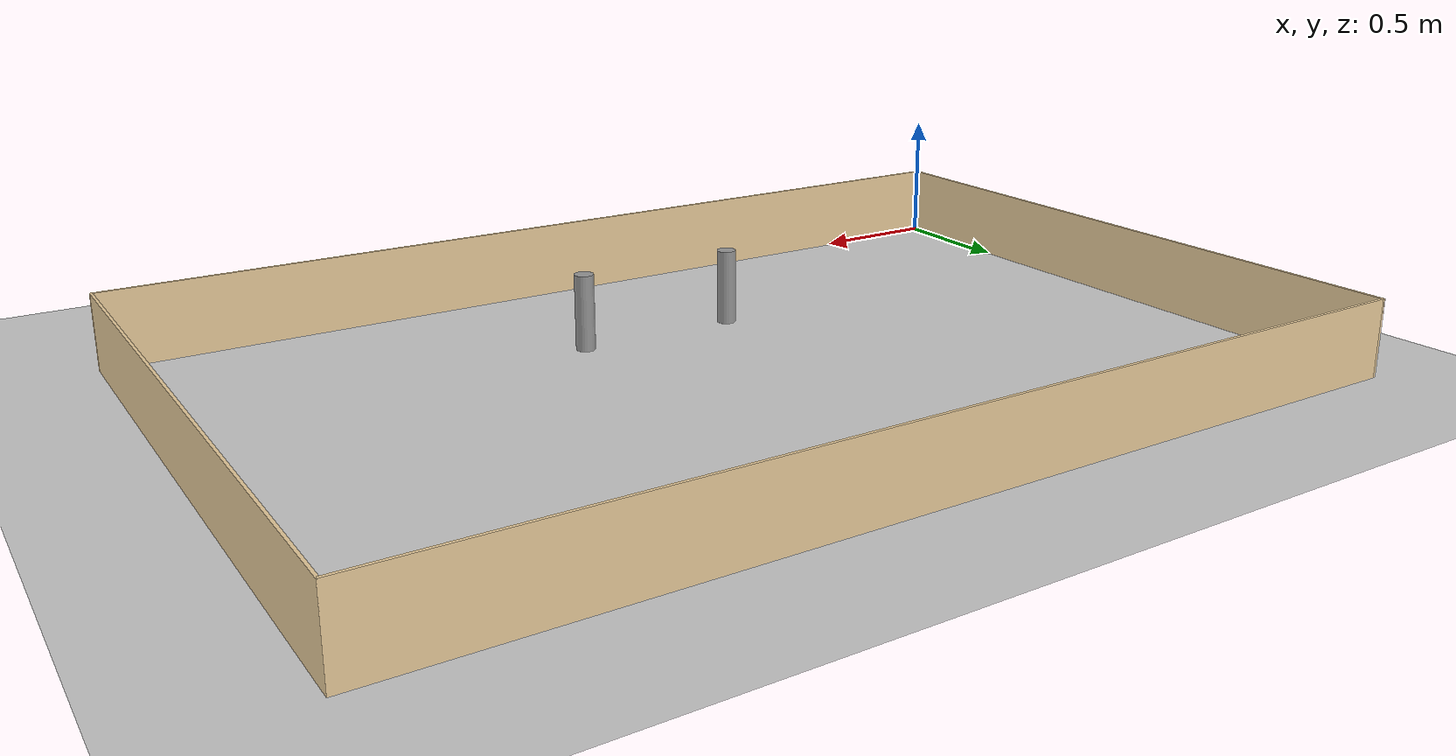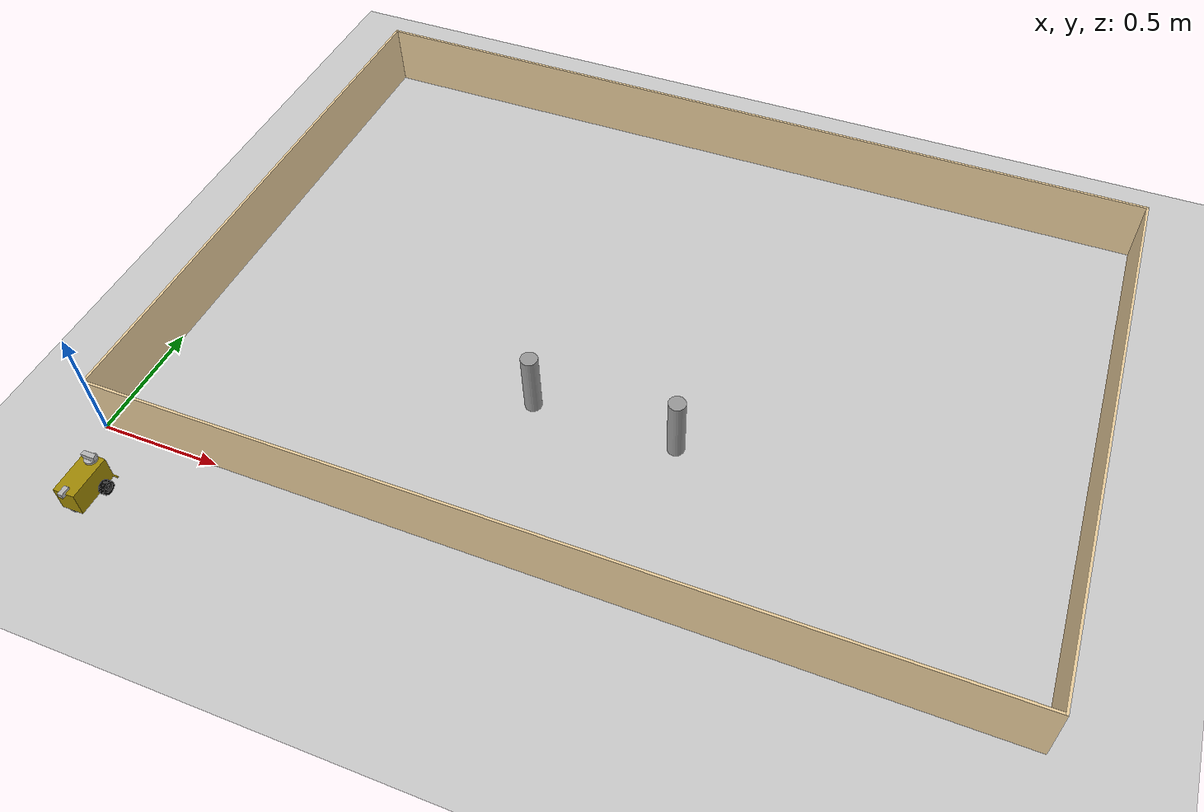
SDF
<?xml version="1.0" ?>
<sdf version="1.4">
  <world name="default">
    <scene>
      <ambient>0.5 0.5 0.5 1.0</ambient>
      <shadows>0</shadows>
    </scene>
    <include>
      <uri>model://ground_plane</uri>
    </include>
    <include>
      <uri>model://sun</uri>
    </include>
    <include>
      <uri>model://lego_mindstorm</uri>
      <name>lego_robot</name>
      <pose>0.14 -0.28 0 0 0 0</pose> <!-- this is the robot's starting position, if you know where it should be, you can change this -->
    </include>

    <model name='unit_cylinder1_1'>
      <link name='link'>
        <pose frame=''>2.11 0.7 0.14 0 -0 0</pose>
        <inertial>
          <mass>1</mass>
          <inertia>
            <ixx>0.145833</ixx>
            <ixy>0</ixy>
            <ixz>0</ixz>
            <iyy>0.145833</iyy>
            <iyz>0</iyz>
            <izz>0.125</izz>
          </inertia>
          <pose frame=''>0 0 0 0 -0 0</pose>
        </inertial>
        <self_collide>0</self_collide>
        <kinematic>0</kinematic>
        <gravity>1</gravity>
        <visual name='visual'>
          <geometry>
            <cylinder>
              <radius>0.035</radius>
              <length>0.28</length>
            </cylinder>
          </geometry>
          <material>
            <script>
              <name>Gazebo/Grey</name>
              <uri>file://media/materials/scripts/gazebo.material</uri>
            </script>
            <ambient>0.3 0.3 0.3 1</ambient>
            <diffuse>0.7 0.7 0.7 1</diffuse>
            <specular>0.01 0.01 0.01 1</specular>
            <emissive>0 0 0 1</emissive>
            <shader type='vertex'>
              <normal_map>__default__</normal_map>
            </shader>
          </material>
          <pose frame=''>0 0 0 0 -0 0</pose>
          <transparency>0</transparency>
          <cast_shadows>1</cast_shadows>
        </visual>
        <collision name='collision'>
          <laser_retro>0</laser_retro>
          <max_contacts>10</max_contacts>
          <pose frame=''>0 0 0 0 -0 0</pose>
          <geometry>
            <cylinder>
              <radius>0.035</radius>
              <length>0.28</length>
            </cylinder>
          </geometry>
          <surface>
            <friction>
              <ode>
                <mu>1</mu>
                <mu2>1</mu2>
                <fdir1>0 0 0</fdir1>
                <slip1>0</slip1>
                <slip2>0</slip2>
              </ode>
              <torsional>
                <coefficient>1</coefficient>
                <patch_radius>0</patch_radius>
                <surface_radius>0</surface_radius>
                <use_patch_radius>1</use_patch_radius>
                <ode>
                  <slip>0</slip>
                </ode>
              </torsional>
            </friction>
            <bounce>
              <restitution_coefficient>0</restitution_coefficient>
              <threshold>1e+06</threshold>
            </bounce>
            <contact>
              <collide_without_contact>0</collide_without_contact>
              <collide_without_contact_bitmask>1</collide_without_contact_bitmask>
              <collide_bitmask>1</collide_bitmask>
              <ode>
                <soft_cfm>0</soft_cfm>
                <soft_erp>0.2</soft_erp>
                <kp>1e+13</kp>
                <kd>1</kd>
                <max_vel>0.01</max_vel>
                <min_depth>0</min_depth>
              </ode>
              <bullet>
                <split_impulse>1</split_impulse>
                <split_impulse_penetration_threshold>-0.01</split_impulse_penetration_threshold>
                <soft_cfm>0</soft_cfm>
                <soft_erp>0.2</soft_erp>
                <kp>1e+13</kp>
                <kd>1</kd>
              </bullet>
            </contact>
          </surface>
        </collision>
      </link>
      <static>1</static>
      <allow_auto_disable>1</allow_auto_disable>
      <pose frame=''>0 0 0 0 -0 0</pose>
    </model>

    <model name='unit_cylinder1_2'>
      <link name='link'>
        <pose frame=''>1.51 0.7 0.14 0 -0 0</pose>
        <inertial>
          <mass>1</mass>
          <inertia>
            <ixx>0.145833</ixx>
            <ixy>0</ixy>
            <ixz>0</ixz>
            <iyy>0.145833</iyy>
            <iyz>0</iyz>
            <izz>0.125</izz>
          </inertia>
          <pose frame=''>0 0 0 0 -0 0</pose>
        </inertial>
        <self_collide>0</self_collide>
        <kinematic>0</kinematic>
        <gravity>1</gravity>
        <visual name='visual'>
          <geometry>
            <cylinder>
              <radius>0.035</radius>
              <length>0.28</length>
            </cylinder>
          </geometry>
          <material>
            <script>
              <name>Gazebo/Grey</name>
              <uri>file://media/materials/scripts/gazebo.material</uri>
            </script>
            <ambient>0.3 0.3 0.3 1</ambient>
            <diffuse>0.7 0.7 0.7 1</diffuse>
            <specular>0.01 0.01 0.01 1</specular>
            <emissive>0 0 0 1</emissive>
            <shader type='vertex'>
              <normal_map>__default__</normal_map>
            </shader>
          </material>
          <pose frame=''>0 0 0 0 -0 0</pose>
          <transparency>0</transparency>
          <cast_shadows>1</cast_shadows>
        </visual>
        <collision name='collision'>
          <laser_retro>0</laser_retro>
          <max_contacts>10</max_contacts>
          <pose frame=''>0 0 0 0 -0 0</pose>
          <geometry>
            <cylinder>
              <radius>0.035</radius>
              <length>0.28</length>
            </cylinder>
          </geometry>
          <surface>
            <friction>
              <ode>
                <mu>1</mu>
                <mu2>1</mu2>
                <fdir1>0 0 0</fdir1>
                <slip1>0</slip1>
                <slip2>0</slip2>
              </ode>
              <torsional>
                <coefficient>1</coefficient>
                <patch_radius>0</patch_radius>
                <surface_radius>0</surface_radius>
                <use_patch_radius>1</use_patch_radius>
                <ode>
                  <slip>0</slip>
                </ode>
              </torsional>
            </friction>
            <bounce>
              <restitution_coefficient>0</restitution_coefficient>
              <threshold>1e+06</threshold>
            </bounce>
            <contact>
              <collide_without_contact>0</collide_without_contact>
              <collide_without_contact_bitmask>1</collide_without_contact_bitmask>
              <collide_bitmask>1</collide_bitmask>
              <ode>
                <soft_cfm>0</soft_cfm>
                <soft_erp>0.2</soft_erp>
                <kp>1e+13</kp>
                <kd>1</kd>
                <max_vel>0.01</max_vel>
                <min_depth>0</min_depth>
              </ode>
              <bullet>
                <split_impulse>1</split_impulse>
                <split_impulse_penetration_threshold>-0.01</split_impulse_penetration_threshold>
                <soft_cfm>0</soft_cfm>
                <soft_erp>0.2</soft_erp>
                <kp>1e+13</kp>
                <kd>1</kd>
              </bullet>
            </contact>
          </surface>
        </collision>
      </link>
      <static>1</static>
      <allow_auto_disable>1</allow_auto_disable>
      <pose frame=''>0 0 0 0 -0 0</pose>
    </model>

    <model name='outer_box'>
    <pose frame=''>1.81 1.21 0 0 -0 0</pose>
    <link name='Wall_0'>
      <collision name='Wall_0_Collision'>
        <geometry>
          <box>
            <size>3.63 0.01 0.28</size>
          </box>
        </geometry>
        <pose frame=''>0 0 0.14 0 -0 0</pose>
      </collision>
      <visual name='Wall_0_Visual'>
        <pose frame=''>0 0 0.14 0 -0 0</pose>
        <geometry>
          <box>
            <size>3.63 0.01 0.28</size>
          </box>
        </geometry>
        <material>
          <script>
            <uri>file://media/materials/scripts/gazebo.material</uri>
            <name>Gazebo/Grey</name>
          </script>
          <ambient>0.921569 0.807843 0.615686 1</ambient>
        </material>
        <meta>
          <layer>0</layer>
        </meta>
      </visual>
      <pose frame=''>0 1.21 0 0 -0 0</pose>
    </link>
    <link name='Wall_2'>
      <collision name='Wall_2_Collision'>
        <geometry>
          <box>
            <size>2.43 0.01 0.28</size>
          </box>
        </geometry>
        <pose frame=''>0 0 0.14 0 -0 0</pose>
      </collision>
      <visual name='Wall_2_Visual'>
        <pose frame=''>0 0 0.14 0 -0 0</pose>
        <geometry>
          <box>
            <size>2.43 0.01 0.28</size>
          </box>
        </geometry>
        <material>
          <script>
            <uri>file://media/materials/scripts/gazebo.material</uri>
            <name>Gazebo/Grey</name>
          </script>
          <ambient>0.921569 0.807843 0.615686 1</ambient>
        </material>
        <meta>
          <layer>0</layer>
        </meta>
      </visual>
      <pose frame=''>1.81 0 0 0 0 -1.5708</pose>
    </link>
    <link name='Wall_4'>
      <collision name='Wall_4_Collision'>
        <geometry>
          <box>
            <size>3.63 0.01 0.28</size>
          </box>
        </geometry>
        <pose frame=''>0 0 0.14 0 -0 0</pose>
      </collision>
      <visual name='Wall_4_Visual'>
        <pose frame=''>0 0 0.14 0 -0 0</pose>
        <geometry>
          <box>
            <size>3.63 0.01 0.28</size>
          </box>
        </geometry>
        <material>
          <script>
            <uri>file://media/materials/scripts/gazebo.material</uri>
            <name>Gazebo/Grey</name>
          </script>
          <ambient>0.921569 0.807843 0.615686 1</ambient>
        </material>
        <meta>
          <layer>0</layer>
        </meta>
      </visual>
      <pose frame=''>0 -1.21 0 0 -0 3.14159</pose>
    </link>
    <link name='Wall_6'>
      <collision name='Wall_6_Collision'>
        <geometry>
          <box>
            <size>2.43 0.01 0.28</size>
          </box>
        </geometry>
        <pose frame=''>0 0 0.14 0 -0 0</pose>
      </collision>
      <visual name='Wall_6_Visual'>
        <pose frame=''>0 0 0.14 0 -0 0</pose>
        <geometry>
          <box>
            <size>2.43 0.01 0.28</size>
          </box>
        </geometry>
        <material>
          <script>
            <uri>file://media/materials/scripts/gazebo.material</uri>
            <name>Gazebo/Grey</name>
          </script>
          <ambient>0.921569 0.807843 0.615686 1</ambient>
        </material>
        <meta>
          <layer>0</layer>
        </meta>
      </visual>
      <pose frame=''>-1.81 0 0 0 -0 1.5708</pose>
    </link>
    <static>1</static>
  </model>

  </world>
</sdf>

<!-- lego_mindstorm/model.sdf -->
<sdf version='1.4'>
  <model name="lego_robot">
    <static>false</static>
    <link name='chassis'>
      <pose>0 0 0 0 0 0</pose>
      <inertial>
        <mass>5</mass>
        <pose>0 -0.03 0.07 0 0 0</pose>
        <inertia>
          <ixx>0.0229</ixx>
          <iyy>0.01275</iyy>
          <izz>0.0169</izz>
        </inertia>
      </inertial>

      <collision name='collision'>
        <geometry>
	  <mesh>
            <uri>model://lego_mindstorm/meshes/body.dae</uri>
          </mesh>
        </geometry>
      </collision>

      <visual name='visual'>
        <geometry>
	  <mesh>
            <uri>model://lego_mindstorm/meshes/body.dae</uri>
          </mesh>
        </geometry>
      </visual>

      <collision name='caster_collision'>
    	<pose>0 -0.0777713 0 0 0 0</pose>
    	<geometry>
	  <mesh>
            <uri>model://lego_mindstorm/meshes/caster.dae</uri>
          </mesh>
    	</geometry>

    	<surface>
      	  <friction>
	    <ode>
	    <mu>0</mu>
	    <mu2>0</mu2>
	    <slip1>1.0</slip1>
	    <slip2>1.0</slip2>
	    </ode>
	  </friction>
    	</surface>
      </collision>

      <visual name='caster_visual'>
    	<pose>0 -0.0777713 0 0 0 0</pose>
    	<geometry>
	  <mesh>
            <uri>model://lego_mindstorm/meshes/caster.dae</uri>
          </mesh>
        </geometry>
      </visual>

      <collision name='camera_collision'>
    	<pose>0 0.1005 0.045 0 0 0</pose>
    	<geometry>
	  <box>
	    <size>0.023 0.023 .04</size>
	  </box>
    	</geometry>
      </collision>

      <visual name='camera_visual'>
    	<pose>0 0.1005 0.045 0 0 0</pose>
    	<geometry>
	  <box>
	    <size>0.023 0.023 .04</size>
	  </box>
        </geometry>
      </visual>

      <sensor name="camera" type="camera">
	<pose>0 0.1005 0.045 0 1.5707 1.5707</pose>
        <camera>
          <horizontal_fov>0.08</horizontal_fov>
          <image>
	    <width>48</width>
            <height>48</height>
          </image>
          <clip>
            <near>0.021</near>
            <far>0.046</far>
          </clip>
        </camera>
        <always_on>1</always_on>
        <update_rate>30</update_rate>
        <visualize>true</visualize>

	<plugin name="camera_controller" filename="libgazebo_ros_camera.so">
          <alwaysOn>true</alwaysOn>
          <updateRate>30.0</updateRate>
          <cameraName>camera1</cameraName>
          <imageTopicName>image_raw</imageTopicName>
          <cameraInfoTopicName>camera_info</cameraInfoTopicName>
          <frameName>camera_link</frameName>
          <hackBaseline>0.07</hackBaseline>
          <distortionK1>0.0</distortionK1>
          <distortionK2>0.0</distortionK2>
          <distortionK3>0.0</distortionK3>
          <distortionT1>0.0</distortionT1>
          <distortionT2>0.0</distortionT2>
        </plugin>

      </sensor>

    </link>

    <link name="sonar_sensor">
      <pose>0 0.07 0.1455 0 0 0</pose>
      <collision name='sonar_collision'>
    	<geometry>
	  <box>
	    <size>0.055 0.02 .023</size>
	  </box>
    	</geometry>
      </collision>

	<inertial>
	 <mass>0.001</mass>
	 <inertia>
	 <ixx>0.0000001</ixx>
	 <iyy>0.0000001</iyy>
	 <izz>0.0000001</izz>
	 </inertia>
	 </inertial>

      <visual name='sonar_visual'>
    	<geometry>
	  <box>
	    <size>0.055 0.02 .023</size>
	  </box>
        </geometry>
      </visual>

      <sensor name="sonar" type="ray">
	<pose>0 0 0 0 0 1.5707</pose>
	<ray>
	  <scan>
	    <horizontal>
	      <samples>100</samples>
              <resolution>1</resolution>
              <min_angle>-0.3927</min_angle>
	      <max_angle>0.3927</max_angle>
	    </horizontal>
	  </scan>
	  <range>
            <min>0.029</min>
            <max>2.55</max>
            <resolution>0.1</resolution>
          </range>
	</ray>
        <always_on>1</always_on>
        <update_rate>30</update_rate>
        <visualize>true</visualize>

	<plugin name="sonar_controller" filename="libgazebo_ros_sonar.so">
          <robotNamespace>lego_robot</robotNamespace>
	  <topicName>sonar</topicName>
        </plugin>

      </sensor>
    </link>

    <link name="sonar_wheel">
      <pose>0 0.07 0.124 0 0 0</pose>
      <collision name="collision">
        <geometry>
	  <cylinder>
            <radius>.025</radius>
            <length>.02</length>
          </cylinder>
        </geometry>
      </collision>

	<inertial>
	 <mass>1</mass>
	 <inertia>
	 <ixx>0.000019</ixx>
	 <iyy>0.000019</iyy>
	 <izz>0.000031</izz>
	 </inertia>
	 </inertial>

      <visual name="visual">
        <geometry>
	  <cylinder>
            <radius>.025</radius>
            <length>.02</length>
          </cylinder>
        </geometry>
      </visual>
    </link>

    <link name="gyro_sensor">
      <collision name='gyro_collision'>
    	<pose>0 -0.085 0.124 0 0 0</pose>
    	<geometry>
	  <box>
	    <size>0.02 0.04 .02</size>
	  </box>
    	</geometry>
      </collision>

	<inertial>
	 <pose>0 -0.085 0.124 0 0 0</pose>
	 <mass>0.0001</mass>
	 <inertia>
	 <ixx>0.00000001</ixx>
	 <iyy>0.00000001</iyy>
	 <izz>0.00000001</izz>
	 </inertia>
	 </inertial>

      <visual name='gyro_visual'>
    	<pose>0 -0.085 0.124 0 0 0</pose>
    	<geometry>
	  <box>
	    <size>0.02 0.04 .02</size>
	  </box>
        </geometry>
      </visual>
    </link>

    <link name="left_wheel">
      <pose>-0.059 0.032 0.028 0 1.5707 0</pose>
      <collision name="collision">
        <geometry>
	  <cylinder>
            <radius>.028</radius>
            <length>.029</length>
          </cylinder>
        </geometry>
	<surface>
      	  <friction>
	    <ode>
  	      <mu>0.6</mu>
	      <mu2>0.6</mu2>
	    </ode>
          </friction>
    	</surface>
      </collision>

	<inertial>
	 <mass>2</mass>
	 <inertia>
	 <ixx>0.000532</ixx>
	 <iyy>0.000532</iyy>
	 <izz>0.00078</izz>
	 </inertia>
	 </inertial>

      <visual name="visual">
	<pose>-0.028 0 0 0 1.5707 0</pose>
        <geometry>
          <mesh>
            <uri>model://lego_mindstorm/meshes/wheel.dae</uri>
          </mesh>
        </geometry>
      </visual>
    </link>

    <link name="right_wheel">
      <pose>0.059 0.032 0.028 0 1.5707 0</pose>
      <collision name="collision">
        <geometry>
	  <cylinder>
            <radius>.028</radius>
            <length>.029</length>
          </cylinder>
        </geometry>
	<surface>
      	  <friction>
	    <ode>
	      <mu>0.6</mu>
	      <mu2>0.6</mu2>
	    </ode>
          </friction>
    	</surface>
	</collision>

	<inertial>
	 <mass>2</mass>
	 <inertia>
	 <ixx>0.000532</ixx>
	 <iyy>0.000532</iyy>
	 <izz>0.00078</izz>
	 </inertia>
	 </inertial>

      <visual name="visual">
	<pose>-0.028 0 0 0 1.5707 0</pose>
        <geometry>
          <mesh>
            <uri>model://lego_mindstorm/meshes/wheel.dae</uri>

          </mesh>
        </geometry>
      </visual>
    </link>

    <joint type="revolute" name="left_wheel_hinge">
      <pose>0 0 -0.03 0 0 0</pose>
      <child>left_wheel</child>
      <parent>chassis</parent>
      <axis>
        <xyz>-1 0 0</xyz>
      </axis>
    </joint>

    <joint type="revolute" name="right_wheel_hinge">
      <pose>0 0 0.03 0 0 0</pose>
      <child>right_wheel</child>
      <parent>chassis</parent>
      <axis>
        <xyz>-1 0 0</xyz>
      </axis>
    </joint>

    <joint type="revolute" name="gyro_hinge">
      <pose>0 0 0 0 0 0</pose>
      <child>gyro_sensor</child>
      <parent>chassis</parent>
      <axis>
        <xyz>0 0 1</xyz>
	<limit>
          <upper>0</upper>
          <lower>0</lower>
    	</limit>
      </axis>
    </joint>

    <joint type="revolute" name="sonar_wheel_hinge">
      <pose>0 0 0 0 0 0</pose>
      <child>sonar_wheel</child>
      <parent>chassis</parent>
      <axis>
        <xyz>0 0 1</xyz>
	<limit>
          <upper>2.3562</upper>
          <lower>-2.3562</lower>
    	</limit>
      </axis>
    </joint>

    <joint type="revolute" name="sonar_hinge">
      <pose>0 0 0 0 0 0</pose>
      <child>sonar_sensor</child>
      <parent>sonar_wheel</parent>
      <axis>
        <xyz>0 0 1</xyz>
	<limit>
          <upper>0</upper>
          <lower>0</lower>
    	</limit>
      </axis>
    </joint>

    <plugin name="right_wheel_controller" filename="libwheel_plugin.so">
	<jointName>right_wheel_hinge</jointName>
      	<commandTopic>cmd_vel_right</commandTopic>
	<wheelDiameter>0.056</wheelDiameter>
      	<drive>true</drive>
    </plugin>
    <plugin name="left_wheel_controller" filename="libwheel_plugin.so">
	<jointName>left_wheel_hinge</jointName>
      	<commandTopic>cmd_vel_left</commandTopic>
	<wheelDiameter>0.056</wheelDiameter>
      	<drive>true</drive>
    </plugin>

    <plugin name="sonar_wheel_controller" filename="libsonar_wheel_plugin.so">

    </plugin>

    <plugin name="gyro_controller" filename="libgyro_plugin.so">

    </plugin>

  </model>
</sdf>
